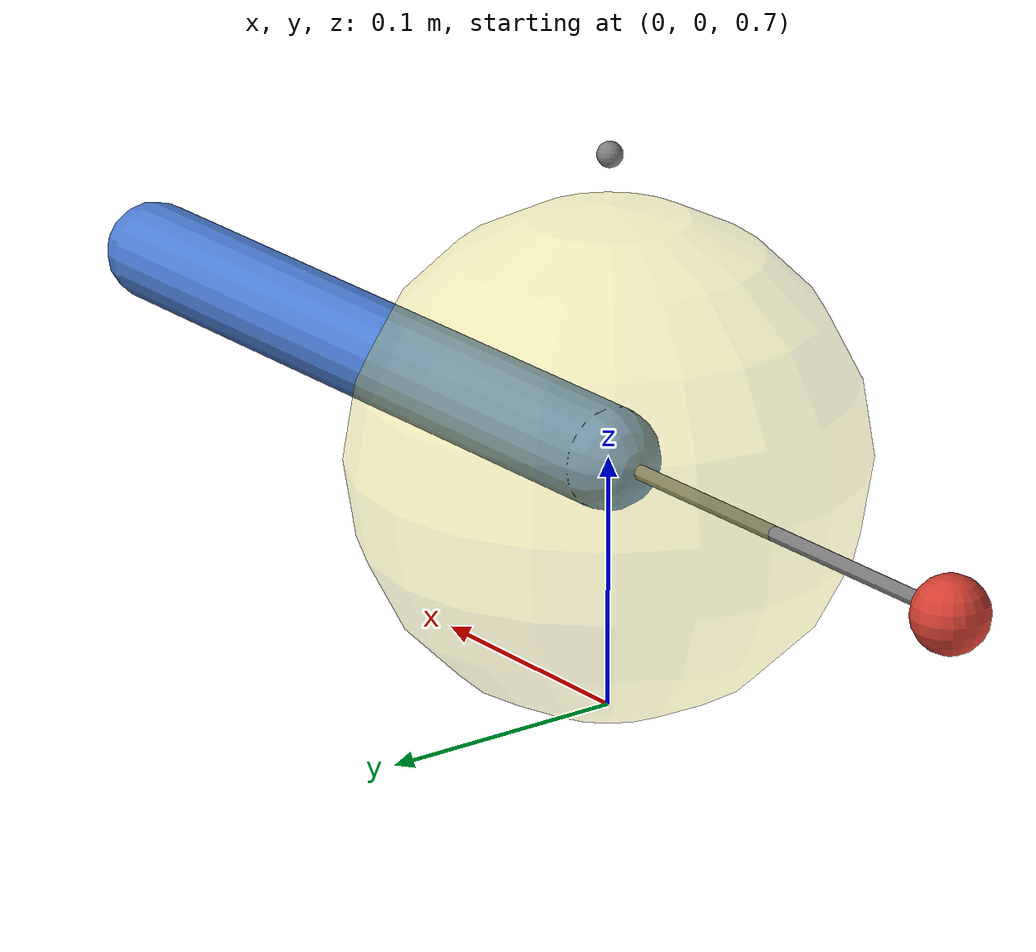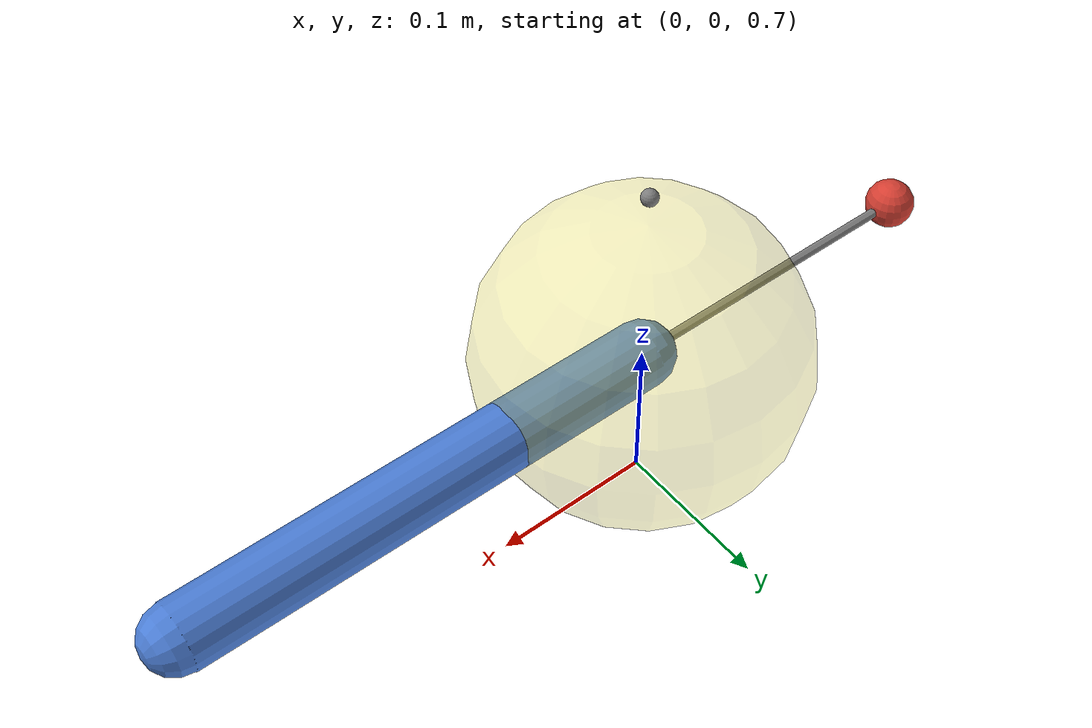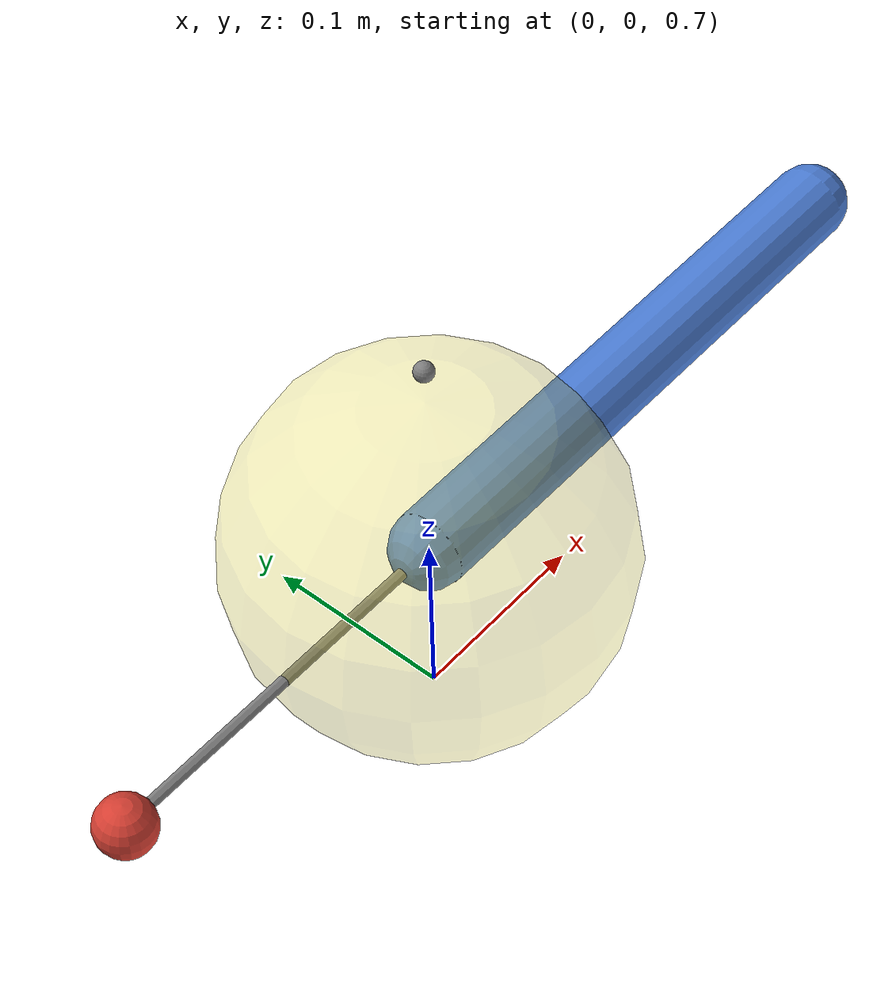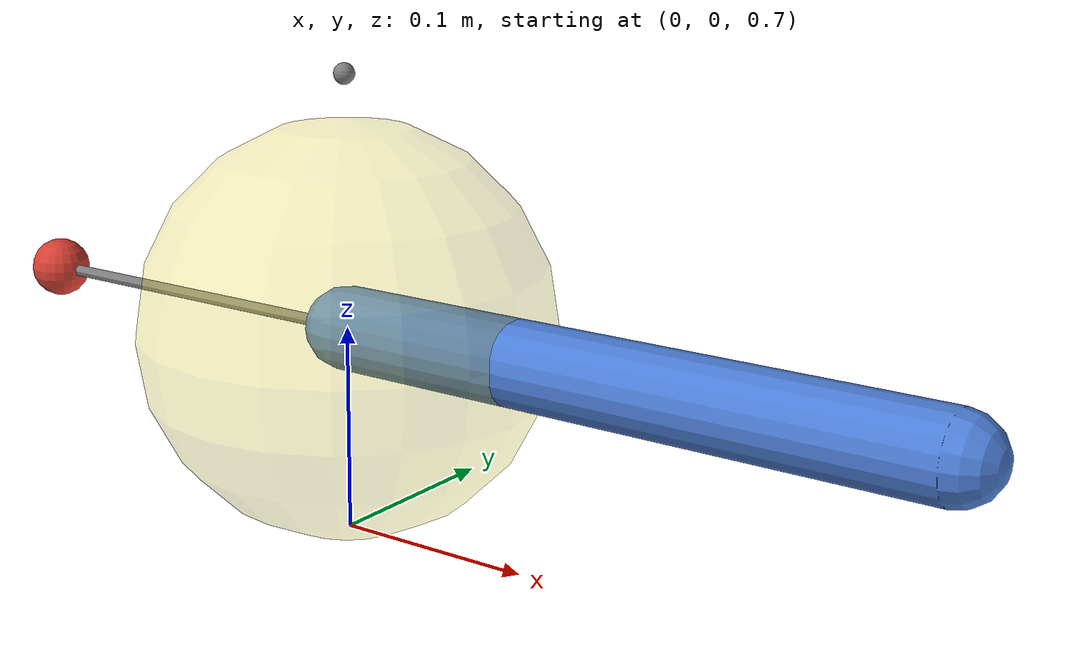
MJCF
<mujoco model="sphere-wrap">
  <option gravity="0 0 0" timestep="0.002"/>
  <compiler angle="radian"/>

  <worldbody>
    <!-- Wrap sphere (translucent, no collision) -->
    <body name="wrap_body" pos="0 0 0.8">
      <geom name="wrap_sphere" type="sphere" size="0.1"
            rgba="0.9 0.85 0.2 0.3" contype="0" conaffinity="0"/>
      <!-- Sidesite above the sphere — disambiguates which side to wrap on -->
      <site name="side" pos="0 0 0.12" size="0.005"/>
    </body>

    <!-- Rotating arm with origin site on the tip -->
    <body name="arm" pos="0 0 0.8">
      <joint name="j1" type="hinge" axis="0 1 0" damping="5.0"/>
      <geom name="arm_geom" type="capsule" fromto="0 0 0 0.3 0 0"
            size="0.02" mass="0.5" rgba="0.3 0.5 0.85 1"/>
      <site name="s_origin" pos="0.2 0 0" size="0.012" rgba="1 1 0 1"/>
    </body>

    <!-- Fixed anchor on the opposite side -->
    <body name="anchor" pos="-0.2 0 0.8">
      <geom name="anchor_geom" type="sphere" size="0.015"
            rgba="0.85 0.25 0.2 1" contype="0" conaffinity="0"/>
      <site name="s_insert" pos="0 0 0" size="0.012" rgba="1 1 0 1"/>
    </body>
  </worldbody>

  <tendon>
    <spatial name="wrap_tendon">
      <site site="s_origin"/>
      <geom geom="wrap_sphere" sidesite="side"/>
      <site site="s_insert"/>
    </spatial>
  </tendon>

  <actuator>
    <motor name="drive" joint="j1" gear="1"/>
  </actuator>

  <sensor>
    <tendonpos name="ten_pos" tendon="wrap_tendon"/>
    <tendonvel name="ten_vel" tendon="wrap_tendon"/>
  </sensor>
</mujoco>
